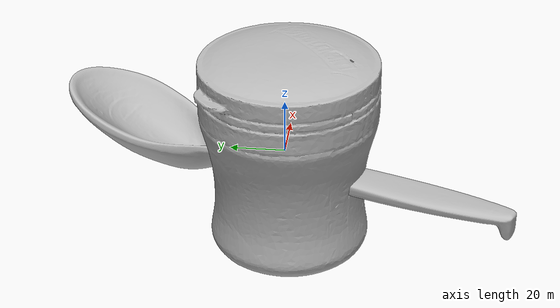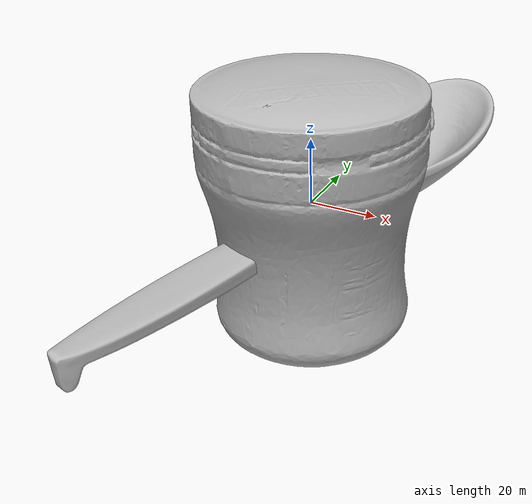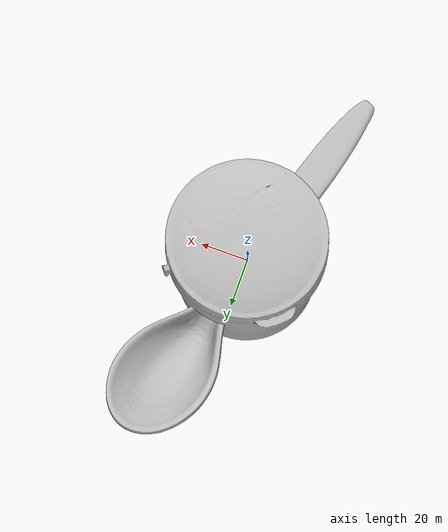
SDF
<sdf version="1.4">
 <world name="default">
  <light name="light1" type="point">
   <pose>0 0 1 0 0 0</pose>
   <diffuse>3 3 3 1</diffuse>
   <specular>3 3 3 1</specular>
  </light>
  <light name="light2" type="point">
   <pose>0 0.5 2 0 0 0</pose>
   <diffuse>1 1 1 1</diffuse>
   <specular>1 1 1 1</specular>
  </light>
  <light name="light3" type="point">
   <pose>0 0.5 2 0 0 0</pose>
   <diffuse>3 3 3 1</diffuse>
   <specular>3 3 3 1</specular>
  </light>
  <scene><ambient>0.7 0.7 0.7</ambient></scene>
  <model name="bottle1">
   <link name="link_bottle1">
    <collision name="default">
     <geometry>
      <mesh><uri>model://green_arrow/collision_meshes/collision.obj</uri><scale>1.0 1.0 1.0</scale></mesh>
     </geometry>
     <surface>
      <friction><ode><mu>0.5</mu><mu2>0.5</mu2></ode></friction>
      <contact><ode><max_vel>0</max_vel><min_depth>0.0001</min_depth><kp>1e8</kp></ode></contact>
     </surface>
    </collision>
    <visual name="default">
     <geometry>
      <mesh><uri>model://green_arrow/visual_meshes/visual.dae</uri><scale>1.0 1.0 1.0</scale></mesh>
     </geometry>
    </visual>
    <inertial>
     <mass>0.31872013211250305</mass>
     <pose>0.0005358478520065546 -0.0008270691032521427 0.002210969803854823 -0.06332250060756175 0.012985582117300467 0.6741007804522225</pose>
     <inertia>
      <ixx>0.00023120124</ixx>
      <iyy>0.000230851</iyy>
      <izz>0.0001492862</izz>
      <ixy>0</ixy>
      <ixz>0</ixz>
      <iyz>0</iyz>
     </inertia>
    </inertial>
   </link>
   <pose>0.2682568430900574 -0.3583442270755768 0.039030831307172775 0.0385179724918962 0.024628561181178513 -0.00042361102717303103</pose>
  </model>
  <model name="bottle2">
   <link name="link_bottle2">
    <collision name="default">
     <geometry>
      <mesh><uri>model://pigeon/collision_meshes/collision.obj</uri><scale>1.0 1.0 1.0</scale></mesh>
     </geometry>
     <surface>
      <friction><ode><mu>0.5</mu><mu2>0.5</mu2></ode></friction>
      <contact><ode><max_vel>0</max_vel><min_depth>0.0001</min_depth><kp>1e8</kp></ode></contact>
     </surface>
    </collision>
    <visual name="default">
     <geometry><mesh><uri>model://pigeon/visual_meshes/visual.dae</uri><scale>1.0 1.0 1.0</scale></mesh></geometry>
    </visual>
    <inertial>
     <mass>0.5279804468154907</mass>
     <pose>-9.675472392700613e-05 -0.0001927677367348224 -0.01593620702624321 -0.011704407495178063 -0.0012978199512556723 -0.04198835484465517</pose>
     <inertia>
      <ixx>0.0013198232</ixx>
      <iyy>0.0014089285</iyy>
      <izz>0.000271492</izz>
      <ixy>0</ixy>
      <ixz>0</ixz>
      <iyz>0</iyz>
     </inertia>
    </inertial>
   </link>
   <pose>0.2225496619939804 0.30163073539733887 0.0986456423997879 0.0090635059318124 0.0032752436265039266 1.9565340878021165</pose>
  </model>
  <model name="silverware1">
   <link name="link_silverware1">
    <collision name="default">
     <geometry>
      <mesh><uri>model://doraemon_spoon/collision_meshes/collision.obj</uri><scale>1.0 1.0 1.0</scale></mesh>
     </geometry>
     <surface>
      <friction><ode><mu>0.5</mu><mu2>0.5</mu2></ode></friction>
      <contact><ode><max_vel>0</max_vel><min_depth>0.0001</min_depth><kp>1e8</kp></ode></contact>
     </surface>
    </collision>
    <visual name="default">
     <geometry>
      <mesh><uri>model://doraemon_spoon/visual_meshes/visual.dae</uri><scale>1.0 1.0 1.0</scale></mesh>
     </geometry>
    </visual>
    <inertial>
     <mass>0.014849366620182991</mass>
     <pose>-0.022165074944496155 -0.0006374582299031317 -0.0033325457479804754 -0.009146985479672626 0.07380416127774835 -0.014123827206003371</pose>
     <inertia>
      <ixx>1.1631438e-06</ixx>
      <iyy>3.3035012e-05</iyy>
      <izz>3.359665e-05</izz>
      <ixy>0</ixy>
      <ixz>0</ixz>
      <iyz>0</iyz>
     </inertia>
    </inertial>
   </link>
   <pose>0.2404765486717224 0.19698788225650787 0.014969496056437492 0.0030268648375589495 -0.004402720438362995 -1.8374188546255905</pose>
  </model>
  <model name="stationery1">
   <link name="link_stationery1">
    <collision name="default">
     <geometry>
      <mesh><uri>model://correction_fuid/collision_meshes/collision.obj</uri><scale>1.0 1.0 1.0</scale></mesh>
     </geometry>
     <surface>
      <friction><ode><mu>0.5</mu><mu2>0.5</mu2></ode></friction>
      <contact><ode><max_vel>0</max_vel><min_depth>0.0001</min_depth><kp>1e8</kp></ode></contact>
     </surface>
    </collision>
    <visual name="default">
     <geometry>
      <mesh><uri>model://correction_fuid/visual_meshes/visual.dae</uri><scale>1.0 1.0 1.0</scale></mesh>
     </geometry>
    </visual>
    <inertial>
     <mass>0.03422689810395241</mass>
     <pose>-0.00012557733862195164 -0.0009722901741042733 -0.001618212671019137 -0.010846609605282003 0.019488228935667613 -0.015992456651572746</pose>
     <inertia>
      <ixx>3.3149332e-05</ixx>
      <iyy>2.0062398e-06</iyy>
      <izz>3.4012115e-05</izz>
      <ixy>0</ixy>
      <ixz>0</ixz>
      <iyz>0</iyz>
     </inertia>
    </inertial>
   </link>
   <pose>0.004456852097064257 0.029325097799301147 0.009666098281741142 -0.007023663315634634 -0.024058675155951312 -1.1475475173713123</pose>
  </model>
  <model name="bowl1">
   <link name="link_bowl1">
    <collision name="default">
     <geometry>
      <mesh><uri>model://doraemon_bowl/collision_meshes/collision.obj</uri><scale>1.0 1.0 1.0</scale></mesh>
     </geometry>
     <surface>
      <friction><ode><mu>0.5</mu><mu2>0.5</mu2></ode></friction>
      <contact><ode><max_vel>0</max_vel><min_depth>0.0001</min_depth><kp>1e8</kp></ode></contact>
     </surface>
    </collision>
    <visual name="default">
     <geometry>
      <mesh><uri>model://doraemon_bowl/visual_meshes/visual.dae</uri><scale>1.0 1.0 1.0</scale></mesh>
     </geometry>
    </visual>
    <inertial>
     <mass>0.10659078508615494</mass>
     <pose>-0.014629560522735119 0.00048571196384727955 -0.002086488762870431 -0.00509398386316645 -0.10568401530986889 -0.026426397124795446</pose>
     <inertia>
      <ixx>0.00014780516</ixx>
      <iyy>0.00019451023</iyy>
      <izz>0.00028617028</izz>
      <ixy>0</ixy>
      <ixz>0</ixz>
      <iyz>0</iyz>
     </inertia>
    </inertial>
   </link>
   <pose>-0.02997807040810585 -0.23806652426719666 0.025905467569828033 0.00859484815780601 0.006344005679747175 -2.326329111632098</pose>
  </model>
  <model name="cup1">
   <link name="link_cup1">
    <collision name="default">
     <geometry>
      <mesh><uri>model://doraemon_cup/collision_meshes/collision.obj</uri><scale>1.0 1.0 1.0</scale></mesh>
     </geometry>
     <surface>
      <friction><ode><mu>0.5</mu><mu2>0.5</mu2></ode></friction>
      <contact><ode><max_vel>0</max_vel><min_depth>0.0001</min_depth><kp>1e8</kp></ode></contact>
     </surface>
    </collision>
    <visual name="default">
     <geometry>
      <mesh><uri>model://doraemon_cup/visual_meshes/visual.dae</uri><scale>1.0 1.0 1.0</scale></mesh>
     </geometry>
    </visual>
    <inertial>
     <mass>0.07019124925136566</mass>
     <pose>-0.0003292977053206414 -0.0016633619088679552 -0.0022522560320794582 0.19498543632694942 -0.013693723781048914 -0.3205469926711019</pose>
     <inertia>
      <ixx>9.599299e-05</ixx>
      <iyy>9.2830705e-05</iyy>
      <izz>7.5864096e-05</izz>
      <ixy>0</ixy>
      <ixz>0</ixz>
      <iyz>0</iyz>
     </inertia>
    </inertial>
   </link>
   <pose>-0.05637500062584877 -0.35628849267959595 0.0462309755384922 -0.0124709606849538 -0.007962442425493032 1.8151316690776707</pose>
  </model>
  <model name="plate1">
   <link name="link_plate1">
    <collision name="default">
     <geometry>
      <mesh><uri>model://hello_kitty_plate/collision_meshes/collision.obj</uri><scale>1.0 1.0 1.0</scale></mesh>
     </geometry>
     <surface>
      <friction><ode><mu>0.5</mu><mu2>0.5</mu2></ode></friction>
      <contact><ode><max_vel>0</max_vel><min_depth>0.0001</min_depth><kp>1e8</kp></ode></contact>
     </surface>
    </collision>
    <visual name="default">
     <geometry>
      <mesh><uri>model://hello_kitty_plate/visual_meshes/visual.dae</uri><scale>1.0 1.0 1.0</scale></mesh>
     </geometry>
    </visual>
    <inertial>
     <mass>0.03849242627620697</mass>
     <pose>0.007314295973628759 0.00028937432216480374 -0.0027947183698415756 -0.00010431794154861864 -0.007054443662422379 -0.014449020506613262</pose>
     <inertia>
      <ixx>7.4224925e-05</ixx>
      <iyy>0.00014008483</iyy>
      <izz>0.00021270475</izz>
      <ixy>0</ixy>
      <ixz>0</ixz>
      <iyz>0</iyz>
     </inertia>
    </inertial>
   </link>
   <pose>0.17389440536499023 0.28476250171661377 0.06902623921632767 -1.2718370024358698 0.00882016881873905 1.8759243803891172</pose>
  </model>
  <model name="box4">
   <link name="link_box4">
    <collision name="default">
     <geometry>
      <mesh><uri>model://wooden_puzzle2/collision_meshes/collision.obj</uri><scale>1.0 1.0 1.0</scale></mesh>
     </geometry>
     <surface>
      <friction><ode><mu>0.5</mu><mu2>0.5</mu2></ode></friction>
      <contact><ode><max_vel>0</max_vel><min_depth>0.0001</min_depth><kp>1e8</kp></ode></contact>
     </surface>
    </collision>
    <visual name="default">
     <geometry>
      <mesh><uri>model://wooden_puzzle2/visual_meshes/visual.dae</uri><scale>1.0 1.0 1.0</scale></mesh>
     </geometry>
    </visual>
    <inertial>
     <mass>0.023858843371272087</mass>
     <pose>2.7402536943554878e-05 4.997663199901581e-05 6.587122334167361e-05 -0.1920347142936951 0.6112821219690274 -0.6338705729322873</pose>
     <inertia>
      <ixx>4.4351036e-06</ixx>
      <iyy>4.557319e-06</iyy>
      <izz>4.4924864e-06</izz>
      <ixy>0</ixy>
      <ixz>0</ixz>
      <iyz>0</iyz>
     </inertia>
    </inertial>
   </link>
   <pose>-0.03880145773291588 0.04655814915895462 0.016917822882533073 0.020887128398501063 0.0006817740839094377 -1.5024526014682602</pose>
  </model>
  <physics type="ode">
   <max_contacts>50</max_contacts>
   <ode>
    <solver><type>quick</type><iters>75</iters></solver>
    <constraints>
     <contact_max_correcting_vel>0</contact_max_correcting_vel>
     <contact_surface_layer>0</contact_surface_layer>
    </constraints>
   </ode>
  </physics>
 </world>
</sdf>
